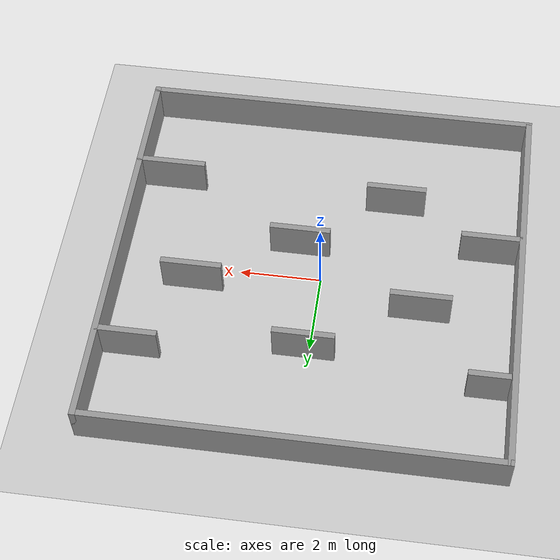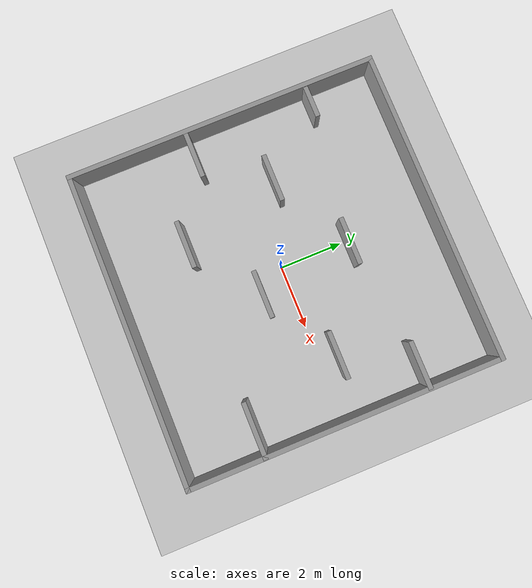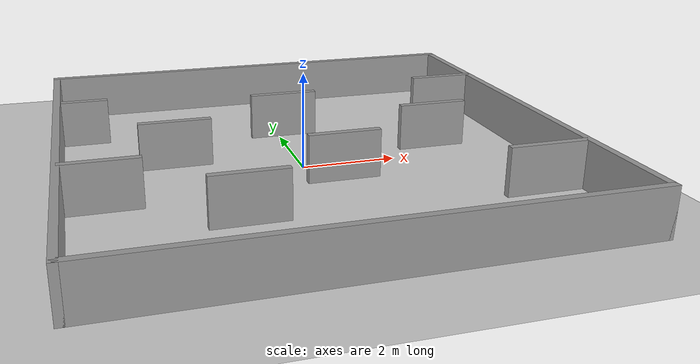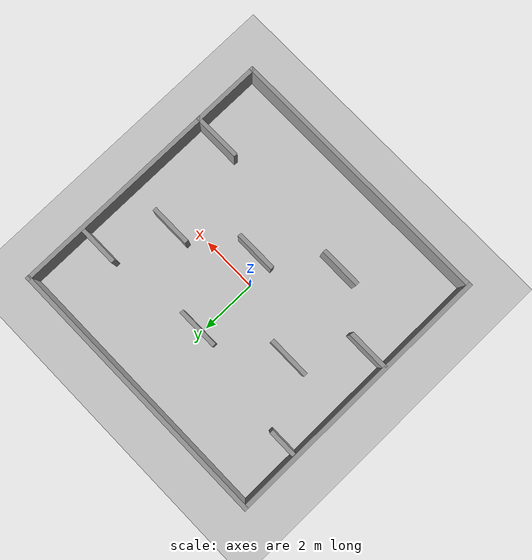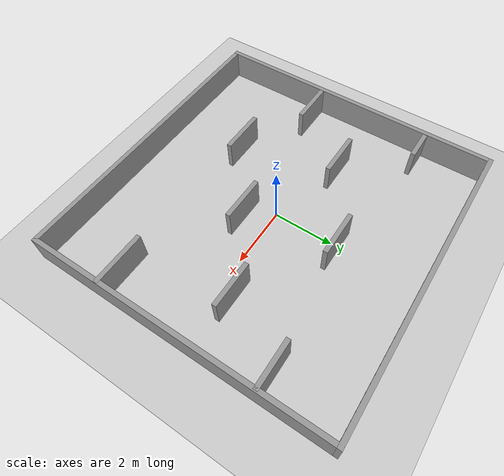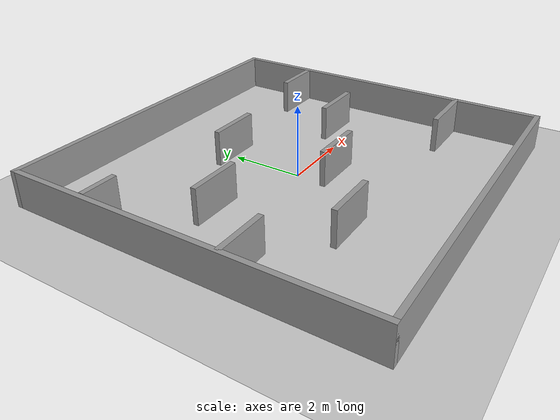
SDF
<sdf version="1.7">
 <world name="default">
  <light name="sun" type="directional">
   <pose>0 0 10 0 -0 0</pose>
   <diffuse>0.8 0.8 0.8 1</diffuse>
   <specular>0.2 0.2 0.2 1</specular>
   <attenuation>
    <range>1000</range>
    <constant>0.9</constant>
    <linear>0.01</linear>
    <quadratic>0.001</quadratic>
   </attenuation>
   <direction>-0.5 0.1 -0.9</direction>
   <spot><inner_angle>0</inner_angle><outer_angle>0</outer_angle><falloff>0</falloff></spot>
  </light>
  <model name="ground_plane">
   <static>1</static>
   <link name="link">
    <collision name="collision">
     <geometry><plane><normal>0 0 1</normal><size>100 100</size></plane></geometry>
     <surface><friction><ode><mu>100</mu><mu2>50</mu2></ode></friction></surface>
    </collision>
    <visual name="visual">
     <cast_shadows>0</cast_shadows>
     <geometry><plane><normal>0 0 1</normal><size>100 100</size></plane></geometry>
     <material>
      <script><uri>file://media/materials/scripts/gazebo.material</uri><name>Gazebo/Grey</name></script>
     </material>
    </visual>
   </link>
  </model>
  <gravity>0 0 -9.8</gravity>
  <magnetic_field>6e-06 2.3e-05 -4.2e-05</magnetic_field>
  <atmosphere type="adiabatic"/>
  <physics type="ode">
   <max_step_size>0.001</max_step_size>
   <real_time_factor>1</real_time_factor>
   <real_time_update_rate>1000</real_time_update_rate>
  </physics>
  <scene><ambient>0.4 0.4 0.4 1</ambient><background>0.7 0.7 0.7 1</background><shadows>1</shadows></scene>
  <spherical_coordinates>
   <surface_model>EARTH_WGS84</surface_model>
   <latitude_deg>0</latitude_deg>
   <longitude_deg>0</longitude_deg>
   <elevation>0</elevation>
   <heading_deg>0</heading_deg>
  </spherical_coordinates>
  <model name="MultiWalls_World">
   <pose>1.28483 0.010358 0 0 -0 0</pose>
   <link name="Wall_18">
    <collision name="Wall_18_Collision">
     <geometry><box><size>10 0.15 1</size></box></geometry>
     <pose>0 0 0.5 0 -0 0</pose>
    </collision>
    <visual name="Wall_18_Visual">
     <pose>0 0 0.5 0 -0 0</pose>
     <geometry><box><size>10 0.15 1</size></box></geometry>
     <material>
      <script><uri>file://media/materials/scripts/gazebo.material</uri><name>Gazebo/Grey</name></script>
      <ambient>1 1 1 1</ambient>
     </material>
     <meta><layer>0</layer></meta>
    </visual>
    <pose>-6.1445 0 0 0 -0 -1.5708</pose>
   </link>
   <link name="Wall_19">
    <collision name="Wall_19_Collision">
     <geometry><box><size>10 0.15 1</size></box></geometry>
     <pose>0 0 0.5 0 -0 0</pose>
    </collision>
    <visual name="Wall_19_Visual">
     <pose>0 0 0.5 0 -0 0</pose>
     <geometry><box><size>10 0.15 1</size></box></geometry>
     <material>
      <script><uri>file://media/materials/scripts/gazebo.material</uri><name>Gazebo/Grey</name></script>
      <ambient>1 1 1 1</ambient>
     </material>
     <meta><layer>0</layer></meta>
    </visual>
    <pose>-1.2195 -4.925 0 0 -0 0</pose>
   </link>
   <link name="Wall_20">
    <collision name="Wall_20_Collision">
     <geometry><box><size>10 0.15 1</size></box></geometry>
     <pose>0 0 0.5 0 -0 0</pose>
    </collision>
    <visual name="Wall_20_Visual">
     <pose>0 0 0.5 0 -0 0</pose>
     <geometry><box><size>10 0.15 1</size></box></geometry>
     <material>
      <script><uri>file://media/materials/scripts/gazebo.material</uri><name>Gazebo/Grey</name></script>
      <ambient>1 1 1 1</ambient>
     </material>
     <meta><layer>0</layer></meta>
    </visual>
    <pose>3.7055 0 0 0 -0 1.5708</pose>
   </link>
   <link name="Wall_22">
    <collision name="Wall_22_Collision">
     <geometry><box><size>10 0.15 1</size></box></geometry>
     <pose>0 0 0.5 0 -0 0</pose>
    </collision>
    <visual name="Wall_22_Visual">
     <pose>0 0 0.5 0 -0 0</pose>
     <geometry><box><size>10 0.15 1</size></box></geometry>
     <material>
      <script><uri>file://media/materials/scripts/gazebo.material</uri><name>Gazebo/Grey</name></script>
      <ambient>1 1 1 1</ambient>
     </material>
     <meta><layer>0</layer></meta>
    </visual>
    <pose>-1.2195 4.925 0 0 -0 0</pose>
   </link>
   <link name="Wall_24">
    <collision name="Wall_24_Collision">
     <geometry><box><size>1 0.15 1</size></box></geometry>
     <pose>0 0 0.5 0 -0 0</pose>
    </collision>
    <visual name="Wall_24_Visual">
     <pose>0 0 0.5 0 -0 0</pose>
     <geometry><box><size>1 0.15 1</size></box></geometry>
     <material>
      <script><uri>file://media/materials/scripts/gazebo.material</uri><name>Gazebo/Grey</name></script>
      <ambient>1 1 1 1</ambient>
     </material>
     <meta><layer>0</layer></meta>
    </visual>
    <pose>-5.55682 2.74099 0 0 -0 3.14159</pose>
   </link>
   <link name="Wall_26">
    <collision name="Wall_26_Collision">
     <geometry><box><size>1.5 0.15 1</size></box></geometry>
     <pose>0 0 0.5 0 -0 0</pose>
    </collision>
    <visual name="Wall_26_Visual">
     <pose>0 0 0.5 0 -0 0</pose>
     <geometry><box><size>1.5 0.15 1</size></box></geometry>
     <material>
      <script><uri>file://media/materials/scripts/gazebo.material</uri><name>Gazebo/Grey</name></script>
      <ambient>1 1 1 1</ambient>
     </material>
     <meta><layer>0</layer></meta>
    </visual>
    <pose>-3.8095 0.758 0 0 -0 0</pose>
   </link>
   <link name="Wall_28">
    <collision name="Wall_28_Collision">
     <geometry><box><size>1.5 0.15 1</size></box></geometry>
     <pose>0 0 0.5 0 -0 0</pose>
    </collision>
    <visual name="Wall_28_Visual">
     <pose>0 0 0.5 0 -0 0</pose>
     <geometry><box><size>1.5 0.15 1</size></box></geometry>
     <material>
      <script><uri>file://media/materials/scripts/gazebo.material</uri><name>Gazebo/Grey</name></script>
      <ambient>1 1 1 1</ambient>
     </material>
     <meta><layer>0</layer></meta>
    </visual>
    <pose>-2.9195 -2.417 0 0 -0 0</pose>
   </link>
   <link name="Wall_30">
    <collision name="Wall_30_Collision">
     <geometry><box><size>1.5 0.15 1</size></box></geometry>
     <pose>0 0 0.5 0 -0 0</pose>
    </collision>
    <visual name="Wall_30_Visual">
     <pose>0 0 0.5 0 -0 0</pose>
     <geometry><box><size>1.5 0.15 1</size></box></geometry>
     <material>
      <script><uri>file://media/materials/scripts/gazebo.material</uri><name>Gazebo/Grey</name></script>
      <ambient>1 1 1 1</ambient>
     </material>
     <meta><layer>0</layer></meta>
    </visual>
    <pose>-0.6745 -0.84 0 0 -0 0</pose>
   </link>
   <link name="Wall_32">
    <collision name="Wall_32_Collision">
     <geometry><box><size>1.5 0.15 1</size></box></geometry>
     <pose>0 0 0.5 0 -0 0</pose>
    </collision>
    <visual name="Wall_32_Visual">
     <pose>0 0 0.5 0 -0 0</pose>
     <geometry><box><size>1.5 0.15 1</size></box></geometry>
     <material>
      <script><uri>file://media/materials/scripts/gazebo.material</uri><name>Gazebo/Grey</name></script>
      <ambient>1 1 1 1</ambient>
     </material>
     <meta><layer>0</layer></meta>
    </visual>
    <pose>1.8135 0.536 0 0 -0 0</pose>
   </link>
   <link name="Wall_34">
    <collision name="Wall_34_Collision">
     <geometry><box><size>1.5 0.15 1</size></box></geometry>
     <pose>0 0 0.5 0 -0 0</pose>
    </collision>
    <visual name="Wall_34_Visual">
     <pose>0 0 0.5 0 -0 0</pose>
     <geometry><box><size>1.5 0.15 1</size></box></geometry>
     <material>
      <script><uri>file://media/materials/scripts/gazebo.material</uri><name>Gazebo/Grey</name></script>
      <ambient>1 1 1 1</ambient>
     </material>
     <meta><layer>0</layer></meta>
    </visual>
    <pose>-1.1595 2.174 0 0 -0 0</pose>
   </link>
   <link name="Wall_36">
    <collision name="Wall_36_Collision">
     <geometry><box><size>1.75 0.15 1</size></box></geometry>
     <pose>0 0 0.5 0 -0 0</pose>
    </collision>
    <visual name="Wall_36_Visual">
     <pose>0 0 0.5 0 -0 0</pose>
     <geometry><box><size>1.75 0.15 1</size></box></geometry>
     <material>
      <script><uri>file://media/materials/scripts/gazebo.material</uri><name>Gazebo/Grey</name></script>
      <ambient>1 1 1 1</ambient>
     </material>
     <meta><layer>0</layer></meta>
    </visual>
    <pose>2.8895 -2.539 0 0 -0 0</pose>
   </link>
   <link name="Wall_38">
    <collision name="Wall_38_Collision">
     <geometry><box><size>1.5 0.15 1</size></box></geometry>
     <pose>0 0 0.5 0 -0 0</pose>
    </collision>
    <visual name="Wall_38_Visual">
     <pose>0 0 0.5 0 -0 0</pose>
     <geometry><box><size>1.5 0.15 1</size></box></geometry>
     <material>
      <script><uri>file://media/materials/scripts/gazebo.material</uri><name>Gazebo/Grey</name></script>
      <ambient>1 1 1 1</ambient>
     </material>
     <meta><layer>0</layer></meta>
    </visual>
    <pose>2.9865 2.639 0 0 -0 0</pose>
   </link>
   <link name="Wall_40">
    <collision name="Wall_40_Collision">
     <geometry><box><size>1.5 0.15 1</size></box></geometry>
     <pose>0 0 0.5 0 -0 0</pose>
    </collision>
    <visual name="Wall_40_Visual">
     <pose>0 0 0.5 0 -0 0</pose>
     <geometry><box><size>1.5 0.15 1</size></box></geometry>
     <material>
      <script><uri>file://media/materials/scripts/gazebo.material</uri><name>Gazebo/Grey</name></script>
      <ambient>1 1 1 1</ambient>
     </material>
     <meta><layer>0</layer></meta>
    </visual>
    <pose>-5.3875 -1.184 0 0 -0 0</pose>
   </link>
   <static>1</static>
  </model>
 </world>
</sdf>
